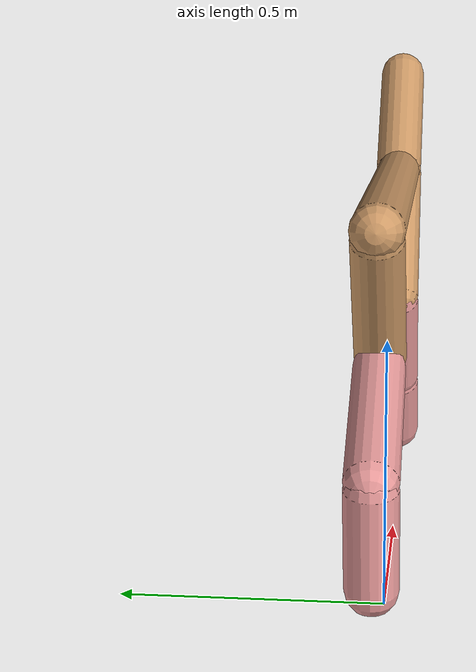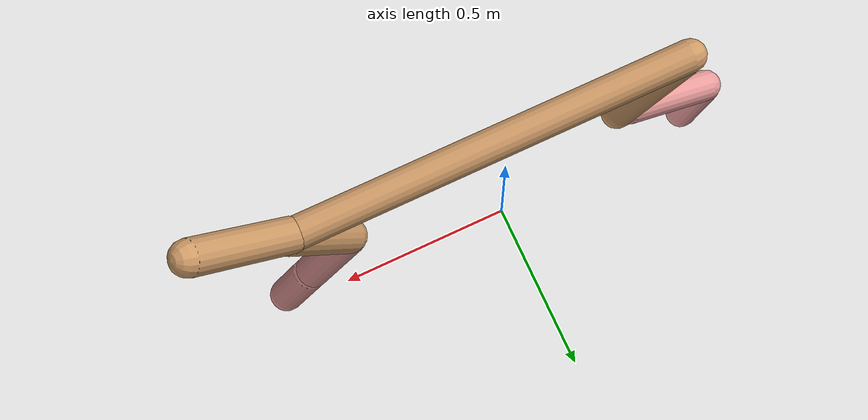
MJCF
<mujoco model="cheetah">
  <compiler angle="radian" coordinate="local" inertiafromgeom="true" settotalmass="14" />
  <default>
    <joint armature=".1" damping=".01" limited="true" solimplimit="0 .8 .03" solreflimit=".02 1" stiffness="8" />
    <geom conaffinity="0" condim="3" contype="1" friction="0.8 .1 .1" rgba="0.8 0.6 .4 1" solimp="0.0 0.8 0.01" solref="0.02 1" />
    <motor ctrllimited="true" ctrlrange="-1 1" />
  </default>
  <size nstack="300000" nuser_geom="1" />
  <option gravity="0 0 -9.81" timestep="0.01" />
  <worldbody>
    <body name="torso" pos="0.0 0.0 0.7608946426216985">
      <joint armature="0" axis="1 0 0" damping="0" limited="false" name="ignorex" pos="0 0 0" stiffness="0" type="slide" />
      <joint armature="0" axis="0 0 1" damping="0" limited="false" name="ignorez" pos="0 0 0" stiffness="0" type="slide" />
      <joint armature="0" axis="0 1 0" damping="0" limited="false" name="ignorey" pos="0 0 0" stiffness="0" type="hinge" />
      <geom fromto="-0.5 0.0 0.0 0.5922420304881768 0.0 0.0" name="torso" size="0.0434858235738729" type="capsule" />
      <geom axisangle="0 1 0 .87" name="head" pos="0.6922420304881768 0.0 0.1" size="0.046545728994603595 0.15" type="capsule" />

      <body name="bthigh" pos="-.5 0 0">
        <joint axis="0 1 0" damping="6" name="bthigh" pos="0 0 0" range="-.52 1.05" stiffness="240" type="hinge" />
        <geom axisangle="0 1 0 -3.8" name="bthigh" pos="0.09377628101038615 0.0 -0.12190916531350199" size="0.04289141764969192 0.13479234189512992" type="capsule" />
        <body name="bshin" pos="0.1475525620207723 0.0 -0.23381833062700397">
          <joint axis="0 1 0" damping="4.5" name="bshin" pos="0 0 0" range="-.785 .785" stiffness="180" type="hinge" />
          <geom axisangle="0 1 0 -2.03" name="bshin" pos="-0.13055516520817953 0.0 -0.06527758260408976" rgba="0.9 0.6 0.6 1" size="0.04289141764969192 0.13944035368461716" type="capsule" />
          <body name="bfoot" pos="-0.26111033041635906 0.0 -0.13055516520817953">
            <joint axis="0 1 0" damping="3" name="bfoot" pos="0 0 0" range="-.4 .785" stiffness="120" type="hinge" />
            <geom axisangle="0 1 0 -.27" name="bfoot" pos="0.02804476505019765 0.0 -0.09067807366230574" rgba="0.9 0.6 0.6 1" size="0.04289141764969192 0.08738262164236009" type="capsule" />
            <inertial mass="10" />
          </body>
        </body>
      </body>
      <body name="fthigh" pos="0.5922420304881768 0.0 0.0">
        <joint axis="0 1 0" damping="4.5" name="fthigh" pos="0 0 0" range="-1.5 0.8" stiffness="180" type="hinge" />
        <geom axisangle="0 1 0 .52" name="fthigh" pos="-0.07426866644513964 0.0 -0.12731771390595364" size="0.046961326570439575 0.1414717442141066" type="capsule" />
        <body name="fshin" pos="-0.1485373328902793 0.0 -0.2546354278119073">
          <joint axis="0 1 0" damping="3" name="fshin" pos="0 0 0" range="-1.2 1.1" stiffness="120" type="hinge" />
          <geom axisangle="0 1 0 -.6" name="fshin" pos="0.06895318329673814 0.0 -0.09547363841086817" rgba="0.9 0.6 0.6 1" size="0.046961326570439575 0.11275191644131805" type="capsule" />
          <body name="ffoot" pos="0.13790636659347627 0.0 -0.19094727682173634">
            <joint axis="0 1 0" damping="1.5" name="ffoot" pos="0 0 0" range="-3.1 -0.3" stiffness="60" type="hinge" />
            <geom axisangle="0 1 0 -.6" name="ffoot" pos="0.04741113683970755 0.0 -0.07375065730621176" rgba="0.9 0.6 0.6 1" size="0.046961326570439575 0.07445881274426665" type="capsule" />
            <inertial mass="10" />
          </body>
        </body>
      </body>
    </body>
  </worldbody>
  <actuator>
    <motor gear="120" joint="bthigh" name="bthigh" />
    <motor gear="90" joint="bshin" name="bshin" />
    <motor gear="60" joint="bfoot" name="bfoot" />
    <motor gear="120" joint="fthigh" name="fthigh" />
    <motor gear="60" joint="fshin" name="fshin" />
    <motor gear="30" joint="ffoot" name="ffoot" />
  </actuator>
</mujoco>
